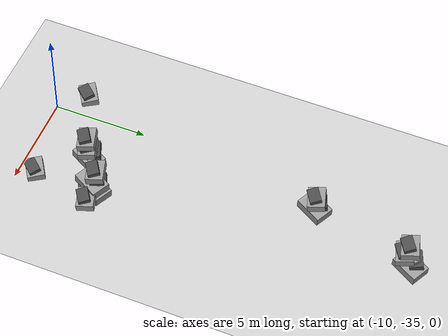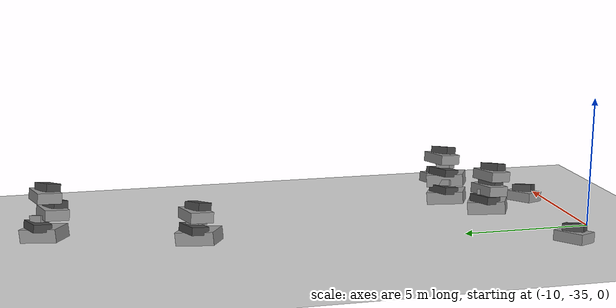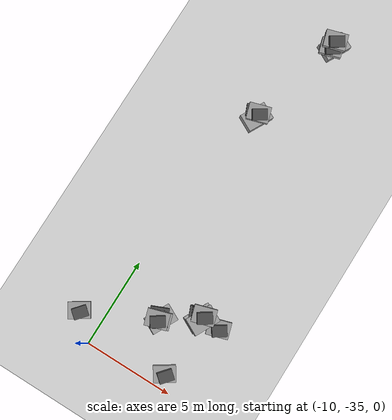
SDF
<sdf version="1.9">
 <world name="disaster_hospital">
  <include>
   <uri>file:///home/robotics/.gazebo/models/ground_plane</uri>
   <static>true</static>
   <name>ground_plane</name>
   <pose>0 0 -0.1 0 -0 0</pose>
  </include>
  <model name="rubble2_01">
   <static>true</static>
   <pose>-5.51736 -30.8139 0.704065 0 -0 0</pose>
   <link name="link">
    <collision name="base_collision">
     <pose>0 0 0.25 0.05 0.1 1.1</pose>
     <geometry><box><size>1.5 1 0.5</size></box></geometry>
    </collision>
    <visual name="base_visual">
     <pose>0 0 0.25 0.05 0.1 1.1</pose>
     <geometry><box><size>1.5 1 0.5</size></box></geometry>
     <material>
      <script><uri>file://media/materials/scripts/gazebo.material</uri><name>Gazebo/Grey</name></script>
     </material>
    </visual>
    <collision name="mid_collision">
     <pose>-0.2 0.2 0.6 0.15 0.05 0.4</pose>
     <geometry><box><size>1 0.7 0.3</size></box></geometry>
    </collision>
    <visual name="mid_visual">
     <pose>-0.2 0.2 0.6 0.15 0.05 0.4</pose>
     <geometry><box><size>1 0.7 0.3</size></box></geometry>
     <material>
      <script><uri>file://media/materials/scripts/gazebo.material</uri><name>Gazebo/DarkGrey</name></script>
     </material>
    </visual>
    <collision name="top_collision">
     <pose>-0.1 0.1 0.85 0.2 0.15 0.8</pose>
     <geometry><box><size>0.6 0.5 0.25</size></box></geometry>
    </collision>
    <visual name="top_visual">
     <pose>-0.1 0.1 0.85 0.2 0.15 0.8</pose>
     <geometry><box><size>0.6 0.5 0.25</size></box></geometry>
     <material>
      <script><uri>file://media/materials/scripts/gazebo.material</uri><name>Gazebo/Grey</name></script>
     </material>
    </visual>
    <inertial>
     <mass>1</mass>
     <inertia><ixx>1</ixx><ixy>0</ixy><ixz>0</ixz><iyy>1</iyy><iyz>0</iyz><izz>1</izz></inertia>
    </inertial>
   </link>
  </model>
  <model name="rubble1_01">
   <static>true</static>
   <pose>-4.6007 -30.7144 0.545113 0 -0 0</pose>
   <link name="link">
    <collision name="base_collision">
     <pose>0 0 0.2 0.1 0.05 0.3</pose>
     <geometry><box><size>1.2 0.9 0.4</size></box></geometry>
    </collision>
    <visual name="base_visual">
     <pose>0 0 0.2 0.1 0.05 0.3</pose>
     <geometry><box><size>1.2 0.9 0.4</size></box></geometry>
     <material>
      <script><uri>file://media/materials/scripts/gazebo.material</uri><name>Gazebo/Grey</name></script>
     </material>
    </visual>
    <collision name="top_collision">
     <pose>0.1 -0.1 0.5 0.2 0.1 0.6</pose>
     <geometry><box><size>0.8 0.6 0.3</size></box></geometry>
    </collision>
    <visual name="top_visual">
     <pose>0.1 -0.1 0.5 0.2 0.1 0.6</pose>
     <geometry><box><size>0.8 0.6 0.3</size></box></geometry>
     <material>
      <script><uri>file://media/materials/scripts/gazebo.material</uri><name>Gazebo/DarkGrey</name></script>
     </material>
    </visual>
    <inertial>
     <mass>1</mass>
     <inertia><ixx>1</ixx><ixy>0</ixy><ixz>0</ixz><iyy>1</iyy><iyz>0</iyz><izz>1</izz></inertia>
    </inertial>
   </link>
  </model>
  <model name="rubble2_02">
   <static>true</static>
   <pose>-7.42704 -31.9147 0 0 -0 0</pose>
   <link name="link">
    <collision name="base_collision">
     <pose>0 0 0.25 0.05 0.1 1.1</pose>
     <geometry><box><size>1.5 1 0.5</size></box></geometry>
    </collision>
    <visual name="base_visual">
     <pose>0 0 0.25 0.05 0.1 1.1</pose>
     <geometry><box><size>1.5 1 0.5</size></box></geometry>
     <material>
      <script><uri>file://media/materials/scripts/gazebo.material</uri><name>Gazebo/Grey</name></script>
     </material>
    </visual>
    <collision name="mid_collision">
     <pose>-0.2 0.2 0.6 0.15 0.05 0.4</pose>
     <geometry><box><size>1 0.7 0.3</size></box></geometry>
    </collision>
    <visual name="mid_visual">
     <pose>-0.2 0.2 0.6 0.15 0.05 0.4</pose>
     <geometry><box><size>1 0.7 0.3</size></box></geometry>
     <material>
      <script><uri>file://media/materials/scripts/gazebo.material</uri><name>Gazebo/DarkGrey</name></script>
     </material>
    </visual>
    <collision name="top_collision">
     <pose>-0.1 0.1 0.85 0.2 0.15 0.8</pose>
     <geometry><box><size>0.6 0.5 0.25</size></box></geometry>
    </collision>
    <visual name="top_visual">
     <pose>-0.1 0.1 0.85 0.2 0.15 0.8</pose>
     <geometry><box><size>0.6 0.5 0.25</size></box></geometry>
     <material>
      <script><uri>file://media/materials/scripts/gazebo.material</uri><name>Gazebo/Grey</name></script>
     </material>
    </visual>
    <inertial>
     <mass>1</mass>
     <inertia><ixx>1</ixx><ixy>0</ixy><ixz>0</ixz><iyy>1</iyy><iyz>0</iyz><izz>1</izz></inertia>
    </inertial>
   </link>
  </model>
  <model name="rubble1_03">
   <static>true</static>
   <pose>-7.51015 -31.9959 1.35527 0 -0 0</pose>
   <link name="link">
    <collision name="base_collision">
     <pose>0 0 0.2 0.1 0.05 0.3</pose>
     <geometry><box><size>1.2 0.9 0.4</size></box></geometry>
    </collision>
    <visual name="base_visual">
     <pose>0 0 0.2 0.1 0.05 0.3</pose>
     <geometry><box><size>1.2 0.9 0.4</size></box></geometry>
     <material>
      <script><uri>file://media/materials/scripts/gazebo.material</uri><name>Gazebo/Grey</name></script>
     </material>
    </visual>
    <collision name="top_collision">
     <pose>0.1 -0.1 0.5 0.2 0.1 0.6</pose>
     <geometry><box><size>0.8 0.6 0.3</size></box></geometry>
    </collision>
    <visual name="top_visual">
     <pose>0.1 -0.1 0.5 0.2 0.1 0.6</pose>
     <geometry><box><size>0.8 0.6 0.3</size></box></geometry>
     <material>
      <script><uri>file://media/materials/scripts/gazebo.material</uri><name>Gazebo/DarkGrey</name></script>
     </material>
    </visual>
    <inertial>
     <mass>1</mass>
     <inertia><ixx>1</ixx><ixy>0</ixy><ixz>0</ixz><iyy>1</iyy><iyz>0</iyz><izz>1</izz></inertia>
    </inertial>
   </link>
  </model>
  <model name="rubble1_04">
   <static>true</static>
   <pose>-7.44189 -31.9552 0.739677 0 -0 0</pose>
   <link name="link">
    <collision name="base_collision">
     <pose>0 0 0.2 0.1 0.05 0.3</pose>
     <geometry><box><size>1.2 0.9 0.4</size></box></geometry>
    </collision>
    <visual name="base_visual">
     <pose>0 0 0.2 0.1 0.05 0.3</pose>
     <geometry><box><size>1.2 0.9 0.4</size></box></geometry>
     <material>
      <script><uri>file://media/materials/scripts/gazebo.material</uri><name>Gazebo/Grey</name></script>
     </material>
    </visual>
    <collision name="top_collision">
     <pose>0.1 -0.1 0.5 0.2 0.1 0.6</pose>
     <geometry><box><size>0.8 0.6 0.3</size></box></geometry>
    </collision>
    <visual name="top_visual">
     <pose>0.1 -0.1 0.5 0.2 0.1 0.6</pose>
     <geometry><box><size>0.8 0.6 0.3</size></box></geometry>
     <material>
      <script><uri>file://media/materials/scripts/gazebo.material</uri><name>Gazebo/DarkGrey</name></script>
     </material>
    </visual>
    <inertial>
     <mass>1</mass>
     <inertia><ixx>1</ixx><ixy>0</ixy><ixz>0</ixz><iyy>1</iyy><iyz>0</iyz><izz>1</izz></inertia>
    </inertial>
   </link>
  </model>
  <model name="rubble2_12">
   <static>true</static>
   <pose>-7.31682 -14.4503 0 0 -0 0</pose>
   <link name="link">
    <collision name="base_collision">
     <pose>0 0 0.25 0.05 0.1 1.1</pose>
     <geometry><box><size>1.5 1 0.5</size></box></geometry>
    </collision>
    <visual name="base_visual">
     <pose>0 0 0.25 0.05 0.1 1.1</pose>
     <geometry><box><size>1.5 1 0.5</size></box></geometry>
     <material>
      <script><uri>file://media/materials/scripts/gazebo.material</uri><name>Gazebo/Grey</name></script>
     </material>
    </visual>
    <collision name="mid_collision">
     <pose>-0.2 0.2 0.6 0.15 0.05 0.4</pose>
     <geometry><box><size>1 0.7 0.3</size></box></geometry>
    </collision>
    <visual name="mid_visual">
     <pose>-0.2 0.2 0.6 0.15 0.05 0.4</pose>
     <geometry><box><size>1 0.7 0.3</size></box></geometry>
     <material>
      <script><uri>file://media/materials/scripts/gazebo.material</uri><name>Gazebo/DarkGrey</name></script>
     </material>
    </visual>
    <collision name="top_collision">
     <pose>-0.1 0.1 0.85 0.2 0.15 0.8</pose>
     <geometry><box><size>0.6 0.5 0.25</size></box></geometry>
    </collision>
    <visual name="top_visual">
     <pose>-0.1 0.1 0.85 0.2 0.15 0.8</pose>
     <geometry><box><size>0.6 0.5 0.25</size></box></geometry>
     <material>
      <script><uri>file://media/materials/scripts/gazebo.material</uri><name>Gazebo/Grey</name></script>
     </material>
    </visual>
    <inertial>
     <mass>1</mass>
     <inertia><ixx>1</ixx><ixy>0</ixy><ixz>0</ixz><iyy>1</iyy><iyz>0</iyz><izz>1</izz></inertia>
    </inertial>
   </link>
  </model>
  <model name="rubble2_21">
   <static>true</static>
   <pose>-8.85664 -20.042 0 0 -0 0</pose>
   <link name="link">
    <collision name="base_collision">
     <pose>0 0 0.25 0.05 0.1 1.1</pose>
     <geometry><box><size>1.5 1 0.5</size></box></geometry>
    </collision>
    <visual name="base_visual">
     <pose>0 0 0.25 0.05 0.1 1.1</pose>
     <geometry><box><size>1.5 1 0.5</size></box></geometry>
     <material>
      <script><uri>file://media/materials/scripts/gazebo.material</uri><name>Gazebo/Grey</name></script>
     </material>
    </visual>
    <collision name="mid_collision">
     <pose>-0.2 0.2 0.6 0.15 0.05 0.4</pose>
     <geometry><box><size>1 0.7 0.3</size></box></geometry>
    </collision>
    <visual name="mid_visual">
     <pose>-0.2 0.2 0.6 0.15 0.05 0.4</pose>
     <geometry><box><size>1 0.7 0.3</size></box></geometry>
     <material>
      <script><uri>file://media/materials/scripts/gazebo.material</uri><name>Gazebo/DarkGrey</name></script>
     </material>
    </visual>
    <collision name="top_collision">
     <pose>-0.1 0.1 0.85 0.2 0.15 0.8</pose>
     <geometry><box><size>0.6 0.5 0.25</size></box></geometry>
    </collision>
    <visual name="top_visual">
     <pose>-0.1 0.1 0.85 0.2 0.15 0.8</pose>
     <geometry><box><size>0.6 0.5 0.25</size></box></geometry>
     <material>
      <script><uri>file://media/materials/scripts/gazebo.material</uri><name>Gazebo/Grey</name></script>
     </material>
    </visual>
    <inertial>
     <mass>1</mass>
     <inertia><ixx>1</ixx><ixy>0</ixy><ixz>0</ixz><iyy>1</iyy><iyz>0</iyz><izz>1</izz></inertia>
    </inertial>
   </link>
  </model>
  <model name="rubble1_19">
   <static>true</static>
   <pose>-7.38147 -14.8113 0.854105 0 -0 0</pose>
   <link name="link">
    <collision name="base_collision">
     <pose>0 0 0.2 0.1 0.05 0.3</pose>
     <geometry><box><size>1.2 0.9 0.4</size></box></geometry>
    </collision>
    <visual name="base_visual">
     <pose>0 0 0.2 0.1 0.05 0.3</pose>
     <geometry><box><size>1.2 0.9 0.4</size></box></geometry>
     <material>
      <script><uri>file://media/materials/scripts/gazebo.material</uri><name>Gazebo/Grey</name></script>
     </material>
    </visual>
    <collision name="top_collision">
     <pose>0.1 -0.1 0.5 0.2 0.1 0.6</pose>
     <geometry><box><size>0.8 0.6 0.3</size></box></geometry>
    </collision>
    <visual name="top_visual">
     <pose>0.1 -0.1 0.5 0.2 0.1 0.6</pose>
     <geometry><box><size>0.8 0.6 0.3</size></box></geometry>
     <material>
      <script><uri>file://media/materials/scripts/gazebo.material</uri><name>Gazebo/DarkGrey</name></script>
     </material>
    </visual>
    <inertial>
     <mass>1</mass>
     <inertia><ixx>1</ixx><ixy>0</ixy><ixz>0</ixz><iyy>1</iyy><iyz>0</iyz><izz>1</izz></inertia>
    </inertial>
   </link>
  </model>
  <model name="rubble1_20">
   <static>true</static>
   <pose>-8.80685 -19.9494 0.854105 0 -0 0</pose>
   <link name="link">
    <collision name="base_collision">
     <pose>0 0 0.2 0.1 0.05 0.3</pose>
     <geometry><box><size>1.2 0.9 0.4</size></box></geometry>
    </collision>
    <visual name="base_visual">
     <pose>0 0 0.2 0.1 0.05 0.3</pose>
     <geometry><box><size>1.2 0.9 0.4</size></box></geometry>
     <material>
      <script><uri>file://media/materials/scripts/gazebo.material</uri><name>Gazebo/Grey</name></script>
     </material>
    </visual>
    <collision name="top_collision">
     <pose>0.1 -0.1 0.5 0.2 0.1 0.6</pose>
     <geometry><box><size>0.8 0.6 0.3</size></box></geometry>
    </collision>
    <visual name="top_visual">
     <pose>0.1 -0.1 0.5 0.2 0.1 0.6</pose>
     <geometry><box><size>0.8 0.6 0.3</size></box></geometry>
     <material>
      <script><uri>file://media/materials/scripts/gazebo.material</uri><name>Gazebo/DarkGrey</name></script>
     </material>
    </visual>
    <inertial>
     <mass>1</mass>
     <inertia><ixx>1</ixx><ixy>0</ixy><ixz>0</ixz><iyy>1</iyy><iyz>0</iyz><izz>1</izz></inertia>
    </inertial>
   </link>
  </model>
  <model name="rubble1_37">
   <static>true</static>
   <pose>-7.36177 -14.5823 1.49923 0 -0 0</pose>
   <link name="link">
    <collision name="base_collision">
     <pose>0 0 0.2 0.1 0.05 0.3</pose>
     <geometry><box><size>1.2 0.9 0.4</size></box></geometry>
    </collision>
    <visual name="base_visual">
     <pose>0 0 0.2 0.1 0.05 0.3</pose>
     <geometry><box><size>1.2 0.9 0.4</size></box></geometry>
     <material>
      <script><uri>file://media/materials/scripts/gazebo.material</uri><name>Gazebo/Grey</name></script>
     </material>
    </visual>
    <collision name="top_collision">
     <pose>0.1 -0.1 0.5 0.2 0.1 0.6</pose>
     <geometry><box><size>0.8 0.6 0.3</size></box></geometry>
    </collision>
    <visual name="top_visual">
     <pose>0.1 -0.1 0.5 0.2 0.1 0.6</pose>
     <geometry><box><size>0.8 0.6 0.3</size></box></geometry>
     <material>
      <script><uri>file://media/materials/scripts/gazebo.material</uri><name>Gazebo/DarkGrey</name></script>
     </material>
    </visual>
    <inertial>
     <mass>1</mass>
     <inertia><ixx>1</ixx><ixy>0</ixy><ixz>0</ixz><iyy>1</iyy><iyz>0</iyz><izz>1</izz></inertia>
    </inertial>
   </link>
  </model>
  <model name="rubble_added_70">
   <static>true</static>
   <pose>-5.69212 -30.783 0 0 -0 0</pose>
   <link name="link">
    <collision name="base_collision">
     <pose>0 0 0.25 0.05 0.1 1.1</pose>
     <geometry><box><size>1.5 1 0.5</size></box></geometry>
    </collision>
    <visual name="base_visual">
     <pose>0 0 0.25 0.05 0.1 1.1</pose>
     <geometry><box><size>1.5 1 0.5</size></box></geometry>
     <material>
      <script><uri>file://media/materials/scripts/gazebo.material</uri><name>Gazebo/Grey</name></script>
     </material>
    </visual>
    <collision name="mid_collision">
     <pose>-0.2 0.2 0.6 0.15 0.05 0.4</pose>
     <geometry><box><size>1 0.7 0.3</size></box></geometry>
    </collision>
    <visual name="mid_visual">
     <pose>-0.2 0.2 0.6 0.15 0.05 0.4</pose>
     <geometry><box><size>1 0.7 0.3</size></box></geometry>
     <material>
      <script><uri>file://media/materials/scripts/gazebo.material</uri><name>Gazebo/DarkGrey</name></script>
     </material>
    </visual>
    <collision name="top_collision">
     <pose>-0.1 0.1 0.85 0.2 0.15 0.8</pose>
     <geometry><box><size>0.6 0.5 0.25</size></box></geometry>
    </collision>
    <visual name="top_visual">
     <pose>-0.1 0.1 0.85 0.2 0.15 0.8</pose>
     <geometry><box><size>0.6 0.5 0.25</size></box></geometry>
     <material>
      <script><uri>file://media/materials/scripts/gazebo.material</uri><name>Gazebo/Grey</name></script>
     </material>
    </visual>
    <inertial>
     <mass>1</mass>
     <inertia><ixx>1</ixx><ixy>0</ixy><ixz>0</ixz><iyy>1</iyy><iyz>0</iyz><izz>1</izz></inertia>
    </inertial>
   </link>
  </model>
  <model name="rubble1_02_clone">
   <static>true</static>
   <pose>-5.567 -30.5745 1.66266 0 -0 0</pose>
   <link name="link">
    <collision name="base_collision">
     <pose>0 0 0.2 0.1 0.05 0.3</pose>
     <geometry><box><size>1.2 0.9 0.4</size></box></geometry>
    </collision>
    <visual name="base_visual">
     <pose>0 0 0.2 0.1 0.05 0.3</pose>
     <geometry><box><size>1.2 0.9 0.4</size></box></geometry>
     <material>
      <script><uri>file://media/materials/scripts/gazebo.material</uri><name>Gazebo/Grey</name></script>
     </material>
    </visual>
    <collision name="top_collision">
     <pose>0.1 -0.1 0.5 0.2 0.1 0.6</pose>
     <geometry><box><size>0.8 0.6 0.3</size></box></geometry>
    </collision>
    <visual name="top_visual">
     <pose>0.1 -0.1 0.5 0.2 0.1 0.6</pose>
     <geometry><box><size>0.8 0.6 0.3</size></box></geometry>
     <material>
      <script><uri>file://media/materials/scripts/gazebo.material</uri><name>Gazebo/DarkGrey</name></script>
     </material>
    </visual>
    <inertial>
     <mass>1</mass>
     <inertia><ixx>1</ixx><ixy>0</ixy><ixz>0</ixz><iyy>1</iyy><iyz>0</iyz><izz>1</izz></inertia>
    </inertial>
   </link>
  </model>
  <model name="rubble1_02_clone_clone">
   <static>true</static>
   <pose>-11.3327 -33.7894 -0.125296 0 -0 0.278258</pose>
   <link name="link">
    <collision name="base_collision">
     <pose>0 0 0.2 0.1 0.05 0.3</pose>
     <geometry><box><size>1.2 0.9 0.4</size></box></geometry>
    </collision>
    <visual name="base_visual">
     <pose>0 0 0.2 0.1 0.05 0.3</pose>
     <geometry><box><size>1.2 0.9 0.4</size></box></geometry>
     <material>
      <script><uri>file://media/materials/scripts/gazebo.material</uri><name>Gazebo/Grey</name></script>
     </material>
    </visual>
    <collision name="top_collision">
     <pose>0.1 -0.1 0.5 0.2 0.1 0.6</pose>
     <geometry><box><size>0.8 0.6 0.3</size></box></geometry>
    </collision>
    <visual name="top_visual">
     <pose>0.1 -0.1 0.5 0.2 0.1 0.6</pose>
     <geometry><box><size>0.8 0.6 0.3</size></box></geometry>
     <material>
      <script><uri>file://media/materials/scripts/gazebo.material</uri><name>Gazebo/DarkGrey</name></script>
     </material>
    </visual>
    <inertial>
     <mass>1</mass>
     <inertia><ixx>1</ixx><ixy>0</ixy><ixz>0</ixz><iyy>1</iyy><iyz>0</iyz><izz>1</izz></inertia>
    </inertial>
   </link>
  </model>
  <model name="rubble1_02_clone_clone_clone">
   <static>true</static>
   <pose>-5.75549 -34.2093 -0.125296 0 -0 0.278258</pose>
   <link name="link">
    <collision name="base_collision">
     <pose>0 0 0.2 0.1 0.05 0.3</pose>
     <geometry><box><size>1.2 0.9 0.4</size></box></geometry>
    </collision>
    <visual name="base_visual">
     <pose>0 0 0.2 0.1 0.05 0.3</pose>
     <geometry><box><size>1.2 0.9 0.4</size></box></geometry>
     <material>
      <script><uri>file://media/materials/scripts/gazebo.material</uri><name>Gazebo/Grey</name></script>
     </material>
    </visual>
    <collision name="top_collision">
     <pose>0.1 -0.1 0.5 0.2 0.1 0.6</pose>
     <geometry><box><size>0.8 0.6 0.3</size></box></geometry>
    </collision>
    <visual name="top_visual">
     <pose>0.1 -0.1 0.5 0.2 0.1 0.6</pose>
     <geometry><box><size>0.8 0.6 0.3</size></box></geometry>
     <material>
      <script><uri>file://media/materials/scripts/gazebo.material</uri><name>Gazebo/DarkGrey</name></script>
     </material>
    </visual>
    <inertial>
     <mass>1</mass>
     <inertia><ixx>1</ixx><ixy>0</ixy><ixz>0</ixz><iyy>1</iyy><iyz>0</iyz><izz>1</izz></inertia>
    </inertial>
   </link>
  </model>
 </world>
</sdf>
